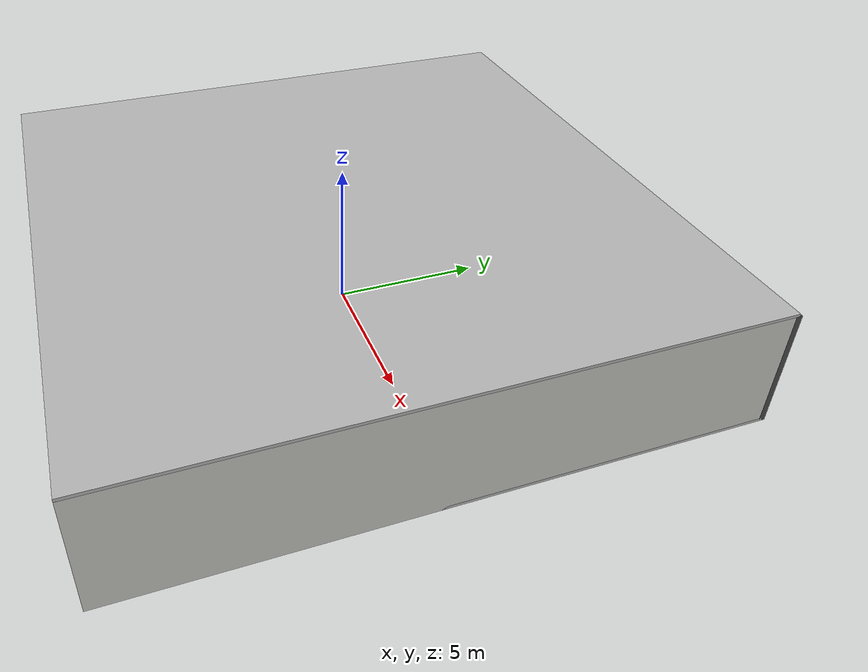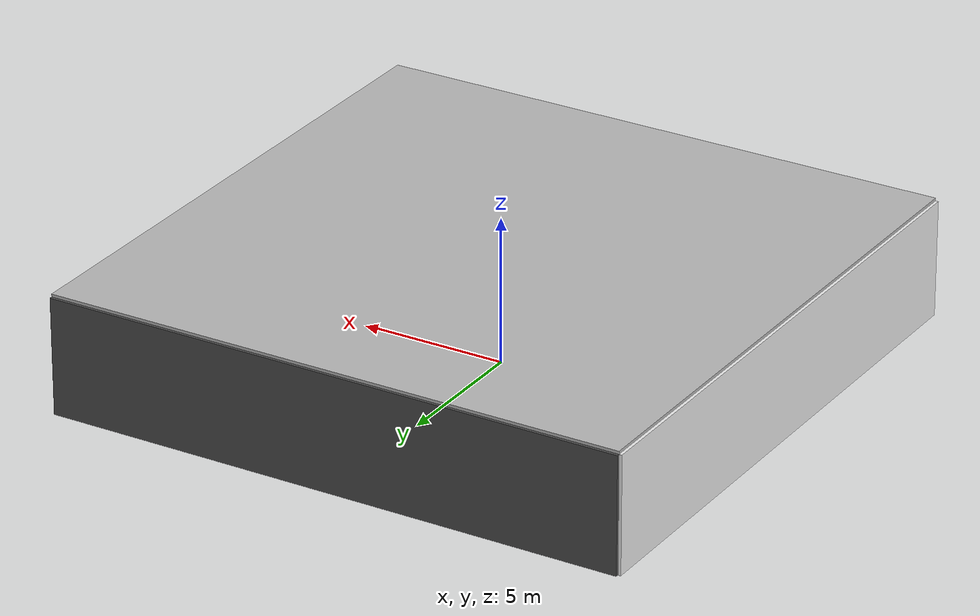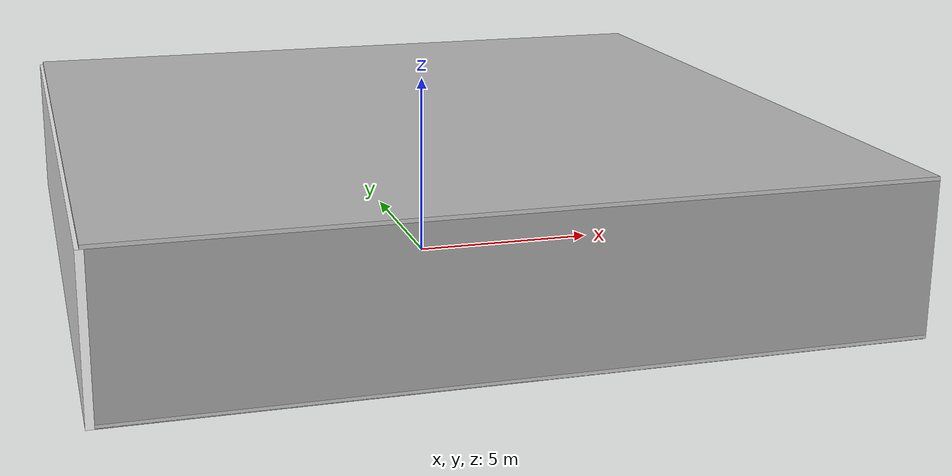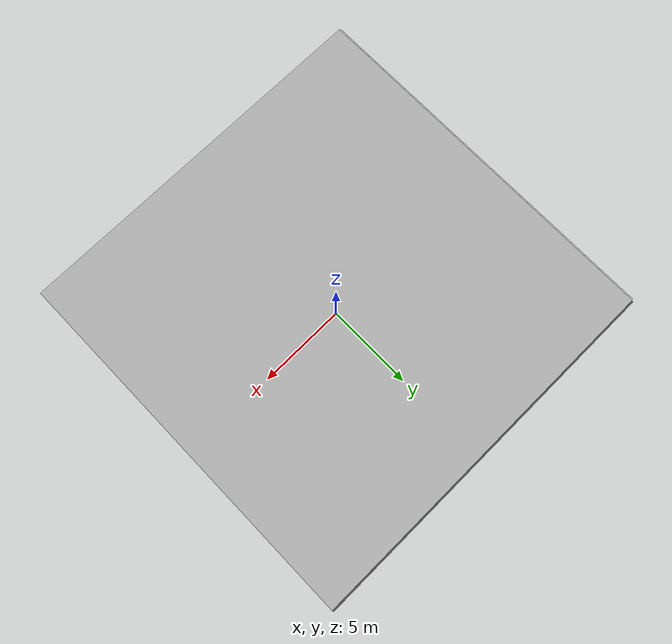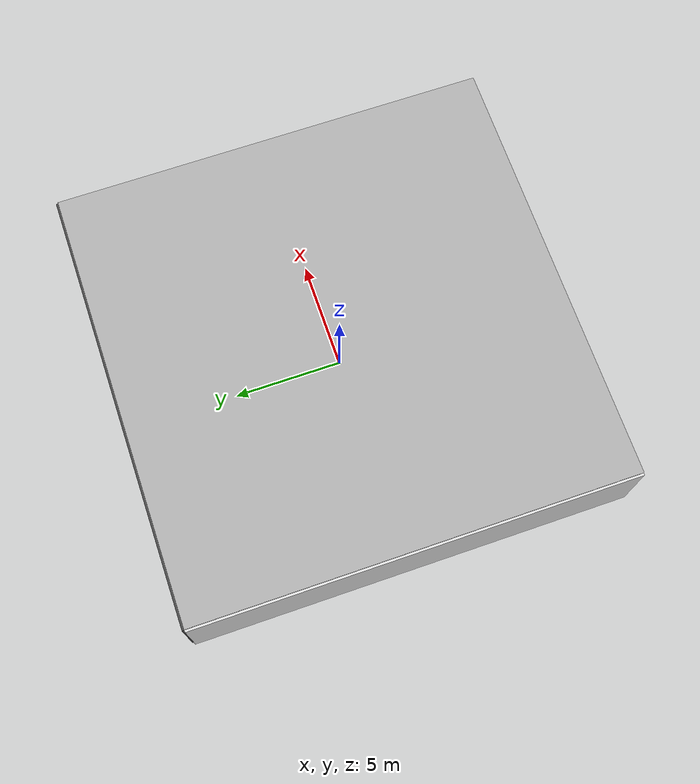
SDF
<sdf version="1.4">
 <world name="default">
  <physics type="ode">
   <max_step_size>0.001</max_step_size>
   <real_time_factor>1</real_time_factor>
   <real_time_update_rate>1000</real_time_update_rate>
   <gravity>0 0 -9.8</gravity>
  </physics>
  <scene><ambient>0.4 0.4 0.4 1</ambient><background>0.7 0.7 0.7 1</background><shadows>1</shadows></scene>
  <model name="Surrounding">
   <static>1</static>
   <link name="Ceiling">
    <collision name="Ceiling_Collision"><geometry><box><size>20 20 0.1</size></box></geometry></collision>
    <visual name="Ceiling_Visual">
     <geometry><box><size>20 20 0.1</size></box></geometry>
     <material>
      <script><uri>file://media/materials/scripts/gazebo.material</uri><name>Gazebo/PioneerBody</name></script>
     </material>
    </visual>
    <pose>0 0 4.05 0 0 0</pose>
   </link>
   <link name="Wall_South">
    <collision name="Wall_South_Collision">
     <geometry><box><size>20 0 4</size></box></geometry>
     <pose>0 0 2 0 -0 0</pose>
    </collision>
    <visual name="Wall_South_Visual">
     <pose>0 0 2 0 -0 0</pose>
     <geometry><box><size>20 0 4</size></box></geometry>
     <material>
      <script><uri>file://media/materials/scripts/gazebo.material</uri><name>Gazebo/Grey</name></script>
     </material>
    </visual>
    <velocity_decay><linear>0</linear><angular>0</angular></velocity_decay>
    <pose>0 -10 0 0 -0 0</pose>
   </link>
   <link name="Wall_East">
    <collision name="Wall_21_Collision">
     <geometry><box><size>20 0 4</size></box></geometry>
     <pose>0 0 2 0 -0 0</pose>
    </collision>
    <visual name="Wall_21_Visual">
     <pose>0 0 2 0 -0 0</pose>
     <geometry><box><size>20 0 4</size></box></geometry>
     <material>
      <script><uri>file://media/materials/scripts/gazebo.material</uri><name>Gazebo/CeilingTiled</name></script>
     </material>
    </visual>
    <velocity_decay><linear>0</linear><angular>0</angular></velocity_decay>
    <pose>10 0 0 0 -0 1.5708</pose>
   </link>
   <link name="Wall_North">
    <collision name="Wall_22_Collision">
     <geometry><box><size>20 0.2 4</size></box></geometry>
     <pose>0 0 2 0 -0 0</pose>
    </collision>
    <visual name="Wall_22_Visual">
     <pose>0 0 2 0 -0 0</pose>
     <geometry><box><size>20 0.2 4</size></box></geometry>
     <material>
      <script><uri>file://media/materials/scripts/gazebo.material</uri><name>Gazebo/Road</name></script>
     </material>
    </visual>
    <velocity_decay><linear>0</linear><angular>0</angular></velocity_decay>
    <pose>0 10 0 0 -0 0</pose>
   </link>
   <link name="Wall_West">
    <collision name="Wall_23_Collision">
     <geometry><box><size>20 0.2 4</size></box></geometry>
     <pose>0 0 2 0 -0 0</pose>
    </collision>
    <visual name="Wall_23_Visual">
     <pose>0 0 2 0 -0 0</pose>
     <geometry><box><size>20 0.2 4</size></box></geometry>
     <material>
      <script><uri>file://media/materials/scripts/gazebo.material</uri><name>Gazebo/WhiteGlow</name></script>
     </material>
    </visual>
    <velocity_decay><linear>0</linear><angular>0</angular></velocity_decay>
    <pose>-10 0 0 0 0 -1.5708</pose>
   </link>
   <link name="Ground_link">
    <collision name="collision">
     <pose>0 0 .05 0 -0 0</pose>
     <geometry><box><size>20 20 0.1</size></box></geometry>
    </collision>
    <visual name="visual">
     <pose>0 0 .05 0 -0 0</pose>
     <geometry><box><size>20 20 0.1</size></box></geometry>
     <material>
      <script><uri>file://media/materials/scripts/gazebo.material</uri><name>Gazebo/JointAnchor</name></script>
     </material>
    </visual>
   </link>
   <static>1</static>
  </model>
  <spherical_coordinates>
   <surface_model>EARTH_WGS84</surface_model>
   <latitude_deg>0</latitude_deg>
   <longitude_deg>0</longitude_deg>
   <elevation>0</elevation>
   <heading_deg>0</heading_deg>
  </spherical_coordinates>
  <light name="lightball_0" type="diffuse">
   <diffuse>0.8 0.8 0.8 1</diffuse>
   <specular>0.2 0.2 0.2 1</specular>
   <attenuation>
    <range>100</range>
    <constant>0.7</constant>
    <linear>0.01</linear>
    <quadratic>0.001</quadratic>
   </attenuation>
   <direction>-0.5 0.1 -0.9</direction>
   <pose>2.25085787556 -3.71688098395 1.68329134563 0 0 0</pose>
  </light>
  <light name="lightball_1" type="diffuse">
   <diffuse>0.8 0.8 0.8 1</diffuse>
   <specular>0.2 0.2 0.2 1</specular>
   <attenuation>
    <range>100</range>
    <constant>0.7</constant>
    <linear>0.01</linear>
    <quadratic>0.001</quadratic>
   </attenuation>
   <direction>-0.5 0.1 -0.9</direction>
   <pose>2.89154109169 -7.52596006077 0.940227455954 0 0 0</pose>
  </light>
  <light name="lightball_2" type="diffuse">
   <diffuse>0.8 0.8 0.8 1</diffuse>
   <specular>0.2 0.2 0.2 1</specular>
   <attenuation>
    <range>100</range>
    <constant>0.7</constant>
    <linear>0.01</linear>
    <quadratic>0.001</quadratic>
   </attenuation>
   <direction>-0.5 0.1 -0.9</direction>
   <pose>8.47837416281 6.6858463909 2.62093014477 0 0 0</pose>
  </light>
  <light name="lightball_3" type="diffuse">
   <diffuse>0.8 0.8 0.8 1</diffuse>
   <specular>0.2 0.2 0.2 1</specular>
   <attenuation>
    <range>100</range>
    <constant>0.7</constant>
    <linear>0.01</linear>
    <quadratic>0.001</quadratic>
   </attenuation>
   <direction>-0.5 0.1 -0.9</direction>
   <pose>-6.28594166779 0.221857554691 1.86988697598 0 0 0</pose>
  </light>
  <include>
   <uri>model://construction_cone</uri>
   <pose>-4.41883071206 -3.70527614114 0 0 0 1.33299652004</pose>
  </include>
  <include><uri>model://table</uri><pose>-4.1809638176 -2.23287679856 0 0 0 1.55157888611</pose></include>
  <include><uri>model://table</uri><pose>4.62574025694 -2.10538700977 0 0 0 2.67820467759</pose></include>
  <include><uri>model://table</uri><pose>7.34997864877 -1.16698460321 0 0 0 1.90474682251</pose></include>
 </world>
</sdf>

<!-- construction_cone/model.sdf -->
<sdf version="1.5">
  <model name="Construction Cone">
    <link name="link">
      <collision name="collision">
        <geometry>
          <mesh>
            <scale>10 10 10</scale>
            <uri>file://isr-testbed/construction_cone/meshes/construction_cone.dae</uri>
          </mesh>
        </geometry>
      </collision>
      <visual name="visual">
        <geometry>
          <mesh>
            <scale>10 10 10</scale>
            <uri>file://isr-testbed/construction_cone/meshes/construction_cone.dae</uri>
          </mesh>
        </geometry>
      </visual>
    </link>
  </model>
</sdf>

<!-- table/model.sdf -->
<sdf version="1.5">
  <model name="table">
    <static>true</static>
    <link name="link">
      <collision name="surface">
        <pose>0 0 1.0 0 0 0</pose>
        <geometry>
          <box>
            <size>1.5 0.8 0.03</size>
          </box>
        </geometry>
        <surface>
          <friction>
            <ode>
              <mu>0.6</mu>
              <mu2>0.6</mu2>
            </ode>
          </friction>
        </surface>
      </collision>
      <visual name="visual1">
        <pose>0 0 1.0 0 0 0</pose>
        <geometry>
          <box>
            <size>1.5 0.8 0.03</size>
          </box>
        </geometry>
        <material>
          <script>
            <uri>model://media/materials/scripts/gazebo.material</uri>
            <name>Gazebo/Wood</name>
          </script>
        </material>
      </visual>
      <collision name="front_left_leg">
        <pose>0.68 0.38 0.5 0 0 0</pose>
        <geometry>
          <cylinder>
            <radius>0.02</radius>
            <length>1.0</length>
          </cylinder>
        </geometry>
      </collision>
      <visual name="front_left_leg">
        <pose>0.68 0.38 0.5 0 0 0</pose>
        <geometry>
          <cylinder>
            <radius>0.02</radius>
            <length>1.0</length>
          </cylinder>
        </geometry>
        <material>
          <script>
            <uri>model://media/materials/scripts/gazebo.material</uri>
            <name>Gazebo/Grey</name>
          </script>
        </material>
      </visual>
      <collision name="front_right_leg">
        <pose>0.68 -0.38 0.5 0 0 0</pose>
        <geometry>
          <cylinder>
            <radius>0.02</radius>
            <length>1.0</length>
          </cylinder>
        </geometry>
      </collision>
      <visual name="front_right_leg">
        <pose>0.68 -0.38 0.5 0 0 0</pose>
        <geometry>
          <cylinder>
            <radius>0.02</radius>
            <length>1.0</length>
          </cylinder>
        </geometry>
        <material>
          <script>
            <uri>model://media/materials/scripts/gazebo.material</uri>
            <name>Gazebo/Grey</name>
          </script>
        </material>
      </visual>
      <collision name="back_right_leg">
        <pose>-0.68 -0.38 0.5 0 0 0</pose>
        <geometry>
          <cylinder>
            <radius>0.02</radius>
            <length>1.0</length>
          </cylinder>
        </geometry>
      </collision>
      <visual name="back_right_leg">
        <pose>-0.68 -0.38 0.5 0 0 0</pose>
        <geometry>
          <cylinder>
            <radius>0.02</radius>
            <length>1.0</length>
          </cylinder>
        </geometry>
        <material>
          <script>
            <uri>model://media/materials/scripts/gazebo.material</uri>
            <name>Gazebo/Grey</name>
          </script>
        </material>
      </visual>
      <collision name="back_left_leg">
        <pose>-0.68 0.38 0.5 0 0 0</pose>
        <geometry>
          <cylinder>
            <radius>0.02</radius>
            <length>1.0</length>
          </cylinder>
        </geometry>
      </collision>
      <visual name="back_left_leg">
        <pose>-0.68 0.38 0.5 0 0 0</pose>
        <geometry>
          <cylinder>
            <radius>0.02</radius>
            <length>1.0</length>
          </cylinder>
        </geometry>
        <material>
          <script>
            <uri>model://media/materials/scripts/gazebo.material</uri>
            <name>Gazebo/Grey</name>
          </script>
        </material>
      </visual>
    </link>
  </model>
</sdf>
